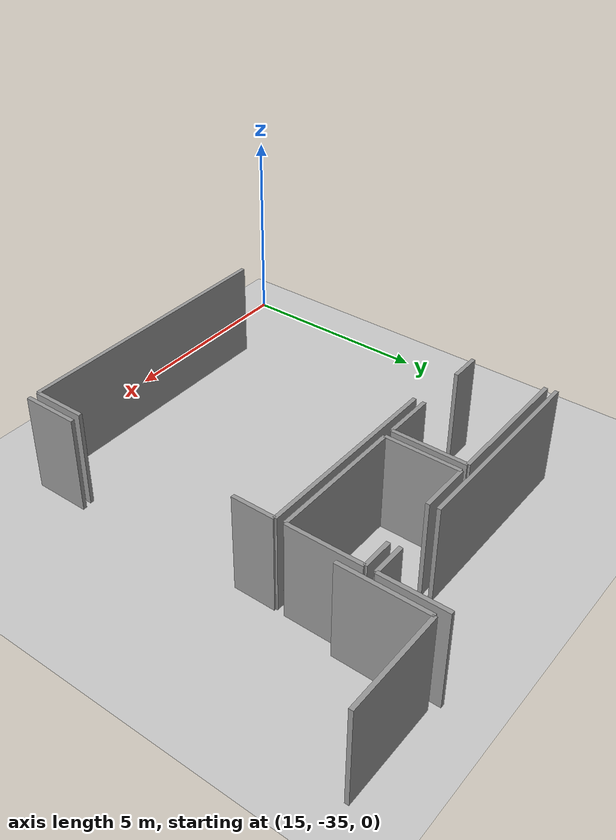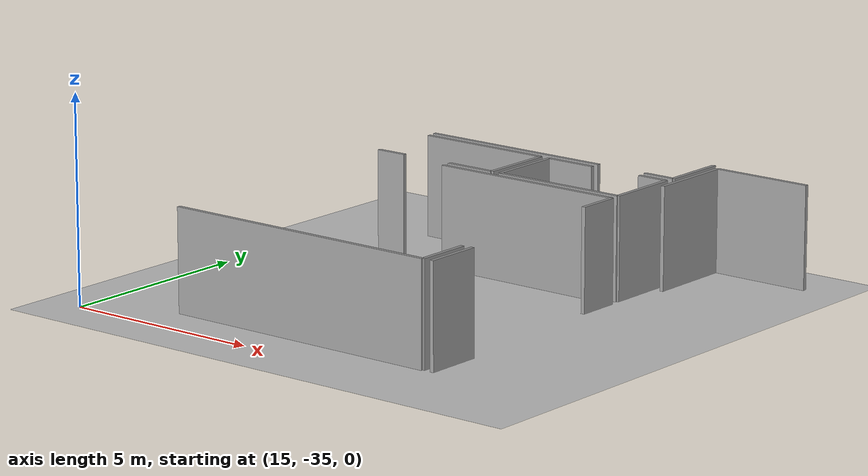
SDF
<sdf version="1.6">
 <world name="default">
  <model name="ground_plane">
   <static>1</static>
   <link name="link">
    <collision name="collision">
     <geometry><plane><normal>0 0 1</normal><size>100 100</size></plane></geometry>
     <surface><friction><ode><mu>100</mu><mu2>50</mu2></ode></friction></surface>
    </collision>
    <visual name="visual">
     <cast_shadows>0</cast_shadows>
     <geometry><plane><normal>0 0 1</normal><size>100 100</size></plane></geometry>
     <material>
      <script><uri>file://media/materials/scripts/gazebo.material</uri><name>Gazebo/Grey</name></script>
     </material>
    </visual>
   </link>
  </model>
  <model name="50041192">
   <static>1</static>
   <link name="Wall_202">
    <collision name="Wall_202_Collision">
     <geometry><box><size>2.15343169024 0.1 2.5</size></box></geometry>
     <pose>1.07671584512 0 1.25 0 0 0</pose>
    </collision>
    <visual name="Wall_202_Visual">
     <pose>1.07671584512 0 1.25 0 0 0</pose>
     <geometry><box><size>2.15343169024 0.1 2.5</size></box></geometry>
     <material>
      <script><uri>file://media/materials/scripts/gazebo.material</uri><name>Gazebo/Grey</name></script>
      <ambient>1 1 1 1</ambient>
     </material>
    </visual>
    <pose>54.2221036179 -59.4976554458 0 0 0 1.57079632679</pose>
   </link>
   <link name="Wall_203">
    <collision name="Wall_203_Collision">
     <geometry><box><size>2.51915672296 0.1 2.5</size></box></geometry>
     <pose>1.25957836148 0 1.25 0 0 0</pose>
    </collision>
    <visual name="Wall_203_Visual">
     <pose>1.25957836148 0 1.25 0 0 0</pose>
     <geometry><box><size>2.51915672296 0.1 2.5</size></box></geometry>
     <material>
      <script><uri>file://media/materials/scripts/gazebo.material</uri><name>Gazebo/Grey</name></script>
      <ambient>1 1 1 1</ambient>
     </material>
    </visual>
    <pose>54.2221036179 -57.3442237556 0 0 0 0.0</pose>
   </link>
   <link name="Wall_212">
    <collision name="Wall_212_Collision">
     <geometry><box><size>1.40762202483 0.1 2.5</size></box></geometry>
     <pose>0.703811012415 0 1.25 0 0 0</pose>
    </collision>
    <visual name="Wall_212_Visual">
     <pose>0.703811012415 0 1.25 0 0 0</pose>
     <geometry><box><size>1.40762202483 0.1 2.5</size></box></geometry>
     <material>
      <script><uri>file://media/materials/scripts/gazebo.material</uri><name>Gazebo/Grey</name></script>
      <ambient>1 1 1 1</ambient>
     </material>
    </visual>
    <pose>54.2247722161 -67.8588819844 0 0 0 1.57079632679</pose>
   </link>
   <link name="Wall_219">
    <collision name="Wall_219_Collision">
     <geometry><box><size>3.41364543225 0.1 2.5</size></box></geometry>
     <pose>1.70682271612 0 1.25 0 0 0</pose>
    </collision>
    <visual name="Wall_219_Visual">
     <pose>1.70682271612 0 1.25 0 0 0</pose>
     <geometry><box><size>3.41364543225 0.1 2.5</size></box></geometry>
     <material>
      <script><uri>file://media/materials/scripts/gazebo.material</uri><name>Gazebo/Grey</name></script>
      <ambient>1 1 1 1</ambient>
     </material>
    </visual>
    <pose>46.8810440573 -58.9991358825 0 0 0 0.0</pose>
   </link>
   <link name="Wall_220">
    <collision name="Wall_220_Collision">
     <geometry><box><size>1.85518406974 0.1 2.5</size></box></geometry>
     <pose>0.92759203487 0 1.25 0 0 0</pose>
    </collision>
    <visual name="Wall_220_Visual">
     <pose>0.92759203487 0 1.25 0 0 0</pose>
     <geometry><box><size>1.85518406974 0.1 2.5</size></box></geometry>
     <material>
      <script><uri>file://media/materials/scripts/gazebo.material</uri><name>Gazebo/Grey</name></script>
      <ambient>1 1 1 1</ambient>
     </material>
    </visual>
    <pose>50.2946894895 -58.9991358825 0 0 0 -1.57079632679</pose>
   </link>
   <link name="Wall_221">
    <collision name="Wall_221_Collision">
     <geometry><box><size>1.27889392957 0.1 2.5</size></box></geometry>
     <pose>0.639446964787 0 1.25 0 0 0</pose>
    </collision>
    <visual name="Wall_221_Visual">
     <pose>0.639446964787 0 1.25 0 0 0</pose>
     <geometry><box><size>1.27889392957 0.1 2.5</size></box></geometry>
     <material>
      <script><uri>file://media/materials/scripts/gazebo.material</uri><name>Gazebo/Grey</name></script>
      <ambient>1 1 1 1</ambient>
     </material>
    </visual>
    <pose>50.2946894895 -60.8543199522 0 0 0 3.14159265359</pose>
   </link>
   <link name="Wall_222">
    <collision name="Wall_222_Collision">
     <geometry><box><size>0.78753944132 0.1 2.5</size></box></geometry>
     <pose>0.39376972066 0 1.25 0 0 0</pose>
    </collision>
    <visual name="Wall_222_Visual">
     <pose>0.39376972066 0 1.25 0 0 0</pose>
     <geometry><box><size>0.78753944132 0.1 2.5</size></box></geometry>
     <material>
      <script><uri>file://media/materials/scripts/gazebo.material</uri><name>Gazebo/Grey</name></script>
      <ambient>1 1 1 1</ambient>
     </material>
    </visual>
    <pose>47.6685346854 -60.8543199522 0 0 0 -3.13045869381</pose>
   </link>
   <link name="Wall_226">
    <collision name="Wall_226_Collision">
     <geometry><box><size>4.94338759483 0.1 2.5</size></box></geometry>
     <pose>2.47169379742 0 1.25 0 0 0</pose>
    </collision>
    <visual name="Wall_226_Visual">
     <pose>2.47169379742 0 1.25 0 0 0</pose>
     <geometry><box><size>4.94338759483 0.1 2.5</size></box></geometry>
     <material>
      <script><uri>file://media/materials/scripts/gazebo.material</uri><name>Gazebo/Grey</name></script>
      <ambient>1 1 1 1</ambient>
     </material>
    </visual>
    <pose>49.0274865617 -61.1004663693 0 0 0 0.0</pose>
   </link>
   <link name="Wall_227">
    <collision name="Wall_227_Collision">
     <geometry><box><size>1.0655331478 0.1 2.5</size></box></geometry>
     <pose>0.532766573901 0 1.25 0 0 0</pose>
    </collision>
    <visual name="Wall_227_Visual">
     <pose>0.532766573901 0 1.25 0 0 0</pose>
     <geometry><box><size>1.0655331478 0.1 2.5</size></box></geometry>
     <material>
      <script><uri>file://media/materials/scripts/gazebo.material</uri><name>Gazebo/Grey</name></script>
      <ambient>1 1 1 1</ambient>
     </material>
    </visual>
    <pose>53.9708741565 -61.1004663693 0 0 0 -1.57079632679</pose>
   </link>
   <link name="Wall_228">
    <collision name="Wall_228_Collision">
     <geometry><box><size>1.35653743027 0.1 2.5</size></box></geometry>
     <pose>0.678268715133 0 1.25 0 0 0</pose>
    </collision>
    <visual name="Wall_228_Visual">
     <pose>0.678268715133 0 1.25 0 0 0</pose>
     <geometry><box><size>1.35653743027 0.1 2.5</size></box></geometry>
     <material>
      <script><uri>file://media/materials/scripts/gazebo.material</uri><name>Gazebo/Grey</name></script>
      <ambient>1 1 1 1</ambient>
     </material>
    </visual>
    <pose>53.9708741565 -66.4860788126 0 0 0 -1.57079632679</pose>
   </link>
   <link name="Wall_229">
    <collision name="Wall_229_Collision">
     <geometry><box><size>7.09708695399 0.1 2.5</size></box></geometry>
     <pose>3.548543477 0 1.25 0 0 0</pose>
    </collision>
    <visual name="Wall_229_Visual">
     <pose>3.548543477 0 1.25 0 0 0</pose>
     <geometry><box><size>7.09708695399 0.1 2.5</size></box></geometry>
     <material>
      <script><uri>file://media/materials/scripts/gazebo.material</uri><name>Gazebo/Grey</name></script>
      <ambient>1 1 1 1</ambient>
     </material>
    </visual>
    <pose>53.9708741565 -67.8426162429 0 0 0 -3.1396409649</pose>
   </link>
   <link name="Wall_230">
    <collision name="Wall_230_Collision">
     <geometry><box><size>1.86128372282 0.1 2.5</size></box></geometry>
     <pose>0.930641861411 0 1.25 0 0 0</pose>
    </collision>
    <visual name="Wall_230_Visual">
     <pose>0.930641861411 0 1.25 0 0 0</pose>
     <geometry><box><size>1.86128372282 0.1 2.5</size></box></geometry>
     <material>
      <script><uri>file://media/materials/scripts/gazebo.material</uri><name>Gazebo/Grey</name></script>
      <ambient>1 1 1 1</ambient>
     </material>
    </visual>
    <pose>50.5476980163 -60.8655026495 0 0 0 1.57079632679</pose>
   </link>
   <link name="Wall_231">
    <collision name="Wall_231_Collision">
     <geometry><box><size>1.28982247468 0.1 2.5</size></box></geometry>
     <pose>0.64491123734 0 1.25 0 0 0</pose>
    </collision>
    <visual name="Wall_231_Visual">
     <pose>0.64491123734 0 1.25 0 0 0</pose>
     <geometry><box><size>1.28982247468 0.1 2.5</size></box></geometry>
     <material>
      <script><uri>file://media/materials/scripts/gazebo.material</uri><name>Gazebo/Grey</name></script>
      <ambient>1 1 1 1</ambient>
     </material>
    </visual>
    <pose>50.5476980163 -59.0042189267 0 0 0 0.0</pose>
   </link>
   <link name="Wall_232">
    <collision name="Wall_232_Collision">
     <geometry><box><size>0.76919166889 0.1 2.5</size></box></geometry>
     <pose>0.384595834445 0 1.25 0 0 0</pose>
    </collision>
    <visual name="Wall_232_Visual">
     <pose>0.384595834445 0 1.25 0 0 0</pose>
     <geometry><box><size>0.76919166889 0.1 2.5</size></box></geometry>
     <material>
      <script><uri>file://media/materials/scripts/gazebo.material</uri><name>Gazebo/Grey</name></script>
      <ambient>1 1 1 1</ambient>
     </material>
    </visual>
    <pose>53.1917705514 -59.0042189267 0 0 0 0.0</pose>
   </link>
   <link name="Wall_233">
    <collision name="Wall_233_Collision">
     <geometry><box><size>1.85124471046 0.1 2.5</size></box></geometry>
     <pose>0.925622355229 0 1.25 0 0 0</pose>
    </collision>
    <visual name="Wall_233_Visual">
     <pose>0.925622355229 0 1.25 0 0 0</pose>
     <geometry><box><size>1.85124471046 0.1 2.5</size></box></geometry>
     <material>
      <script><uri>file://media/materials/scripts/gazebo.material</uri><name>Gazebo/Grey</name></script>
      <ambient>1 1 1 1</ambient>
     </material>
    </visual>
    <pose>53.9609622203 -59.0042189267 0 0 0 -1.57079632679</pose>
   </link>
   <link name="Wall_234">
    <collision name="Wall_234_Collision">
     <geometry><box><size>3.41327896715 0.1 2.5</size></box></geometry>
     <pose>1.70663948358 0 1.25 0 0 0</pose>
    </collision>
    <visual name="Wall_234_Visual">
     <pose>1.70663948358 0 1.25 0 0 0</pose>
     <geometry><box><size>3.41327896715 0.1 2.5</size></box></geometry>
     <material>
      <script><uri>file://media/materials/scripts/gazebo.material</uri><name>Gazebo/Grey</name></script>
      <ambient>1 1 1 1</ambient>
     </material>
    </visual>
    <pose>53.9609622203 -60.8554636372 0 0 0 -3.1386514856</pose>
   </link>
   <link name="Wall_237">
    <collision name="Wall_237_Collision">
     <geometry><box><size>1.61971204554 0.1 2.5</size></box></geometry>
     <pose>0.809856022772 0 1.25 0 0 0</pose>
    </collision>
    <visual name="Wall_237_Visual">
     <pose>0.809856022772 0 1.25 0 0 0</pose>
     <geometry><box><size>1.61971204554 0.1 2.5</size></box></geometry>
     <material>
      <script><uri>file://media/materials/scripts/gazebo.material</uri><name>Gazebo/Grey</name></script>
      <ambient>1 1 1 1</ambient>
     </material>
    </visual>
    <pose>53.975067668 -57.1299734411 0 0 0 -1.57079632679</pose>
   </link>
   <link name="Wall_238">
    <collision name="Wall_238_Collision">
     <geometry><box><size>0.816845208595 0.1 2.5</size></box></geometry>
     <pose>0.408422604298 0 1.25 0 0 0</pose>
    </collision>
    <visual name="Wall_238_Visual">
     <pose>0.408422604298 0 1.25 0 0 0</pose>
     <geometry><box><size>0.816845208595 0.1 2.5</size></box></geometry>
     <material>
      <script><uri>file://media/materials/scripts/gazebo.material</uri><name>Gazebo/Grey</name></script>
      <ambient>1 1 1 1</ambient>
     </material>
    </visual>
    <pose>53.975067668 -58.7496854866 0 0 0 3.14159265359</pose>
   </link>
   <link name="Wall_239">
    <collision name="Wall_239_Collision">
     <geometry><box><size>4.97528369741 0.1 2.5</size></box></geometry>
     <pose>2.4876418487 0 1.25 0 0 0</pose>
    </collision>
    <visual name="Wall_239_Visual">
     <pose>2.4876418487 0 1.25 0 0 0</pose>
     <geometry><box><size>4.97528369741 0.1 2.5</size></box></geometry>
     <material>
      <script><uri>file://media/materials/scripts/gazebo.material</uri><name>Gazebo/Grey</name></script>
      <ambient>1 1 1 1</ambient>
     </material>
    </visual>
    <pose>51.8262107176 -58.7496854866 0 0 0 3.14159265359</pose>
   </link>
   <pose>-29.75 33.9121859632 0 0 0 0</pose>
  </model>
 </world>
</sdf>
